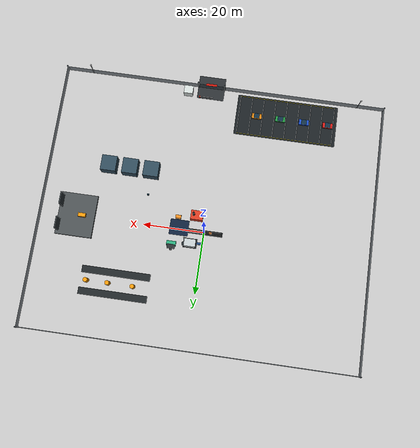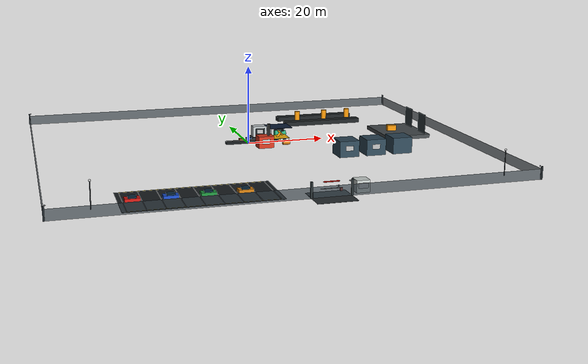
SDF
<sdf version="1.9">
 <world name="factory_floor">
  <model name="assembly_conveyor">
   <static>true</static>
   <pose>1 0 .45 0 0 0</pose>
   <link name="belt">
    <visual name="frame">
     <geometry><box><size>14 1.4 .7</size></box></geometry>
     <material><diffuse>.09 .11 .12 1</diffuse></material>
    </visual>
    <visual name="belt">
     <pose>0 0 .38 0 0 0</pose>
     <geometry><box><size>13.6 1.05 .08</size></box></geometry>
     <material><diffuse>.05 .06 .06 1</diffuse></material>
    </visual>
    <visual name="crate1">
     <pose>-3 0 .68 0 0 0</pose>
     <geometry><box><size>1 .8 .5</size></box></geometry>
     <material><diffuse>.55 .31 .12 1</diffuse></material>
    </visual>
    <visual name="crate2">
     <pose>2 0 .68 0 0 0</pose>
     <geometry><box><size>1 .8 .5</size></box></geometry>
     <material><diffuse>.55 .31 .12 1</diffuse></material>
    </visual>
   </link>
  </model>
  <model name="workstation">
   <static>true</static>
   <pose>10 6 1 0 0 0</pose>
   <link name="desk">
    <visual name="body">
     <geometry><box><size>2.5 1.2 1.8</size></box></geometry>
     <material><diffuse>.15 .17 .18 1</diffuse></material>
    </visual>
    <visual name="screen">
     <pose>0 -0.62 .4 0 0 0</pose>
     <geometry><box><size>1.3 .05 .8</size></box></geometry>
     <material><emissive>.02 .45 .65 1</emissive></material>
    </visual>
   </link>
  </model>
  <model name="automated_assembly_line">
   <static>true</static>
   <pose>26 17 0 0 0 0</pose>
   <link name="line">
    <visual name="line1">
     <pose>0 0 .6 0 0 0</pose>
     <geometry><box><size>22 2.2 1.2</size></box></geometry>
     <material><diffuse>.12 .14 .15 1</diffuse></material>
    </visual>
    <visual name="line2">
     <pose>0 7 .6 0 0 0</pose>
     <geometry><box><size>22 2.2 1.2</size></box></geometry>
     <material><diffuse>.12 .14 .15 1</diffuse></material>
    </visual>
    <visual name="robot_station1">
     <pose>-6 3.5 1.6 0 0 0</pose>
     <geometry><cylinder><radius>.7</radius><length>3.2</length></cylinder></geometry>
     <material><diffuse>.94 .58 .03 1</diffuse></material>
    </visual>
    <visual name="robot_station2">
     <pose>2 3.5 1.6 0 0 0</pose>
     <geometry><cylinder><radius>.7</radius><length>3.2</length></cylinder></geometry>
     <material><diffuse>.94 .58 .03 1</diffuse></material>
    </visual>
    <visual name="robot_station3">
     <pose>9 3.5 1.6 0 0 0</pose>
     <geometry><cylinder><radius>.7</radius><length>3.2</length></cylinder></geometry>
     <material><diffuse>.94 .58 .03 1</diffuse></material>
    </visual>
   </link>
  </model>
  <model name="quality_test_bays">
   <static>true</static>
   <pose>27 -18 0 0 0 0</pose>
   <link name="test">
    <visual name="bay1">
     <pose>-7 0 2 0 0 0</pose>
     <geometry><box><size>5 5 4</size></box></geometry>
     <material><diffuse>.18 .28 .34 1</diffuse></material>
    </visual>
    <visual name="bay2">
     <pose>0 0 2 0 0 0</pose>
     <geometry><box><size>5 5 4</size></box></geometry>
     <material><diffuse>.18 .28 .34 1</diffuse></material>
    </visual>
    <visual name="bay3">
     <pose>7 0 2 0 0 0</pose>
     <geometry><box><size>5 5 4</size></box></geometry>
     <material><diffuse>.18 .28 .34 1</diffuse></material>
    </visual>
    <visual name="screen1">
     <pose>-7 -2.55 2.2 0 0 0</pose>
     <geometry><box><size>2 .04 1.2</size></box></geometry>
     <material><emissive>.02 .5 .7 1</emissive></material>
    </visual>
    <visual name="screen2">
     <pose>0 -2.55 2.2 0 0 0</pose>
     <geometry><box><size>2 .04 1.2</size></box></geometry>
     <material><emissive>.02 .5 .7 1</emissive></material>
    </visual>
   </link>
  </model>
  <model name="shipping_dock">
   <static>true</static>
   <pose>42 0 0 0 0 0</pose>
   <link name="dock">
    <visual name="dock_platform">
     <pose>0 0 .5 0 0 0</pose>
     <geometry><box><size>12 14 1</size></box></geometry>
     <material><diffuse>.28 .3 .31 1</diffuse></material>
    </visual>
    <visual name="door1">
     <pose>5 -4 3 0 0 0</pose>
     <geometry><box><size>.2 4 6</size></box></geometry>
     <material><diffuse>.18 .22 .24 1</diffuse></material>
    </visual>
    <visual name="door2">
     <pose>5 4 3 0 0 0</pose>
     <geometry><box><size>.2 4 6</size></box></geometry>
     <material><diffuse>.18 .22 .24 1</diffuse></material>
    </visual>
    <visual name="forklift">
     <pose>-2 0 1.2 0 0 0</pose>
     <geometry><box><size>2.4 1.2 2.4</size></box></geometry>
     <material><diffuse>.94 .58 .03 1</diffuse></material>
    </visual>
    <visual name="forks">
     <pose>-3.5 0 .4 0 0 0</pose>
     <geometry><box><size>2 .8 .12</size></box></geometry>
     <material><diffuse>.16 .17 .18 1</diffuse></material>
    </visual>
   </link>
  </model>
  <model name="CNC_03">
   <static>true</static>
   <pose>4 4 0 0 0 0</pose>
   <link name="machine">
    <visual name="base">
     <pose>0 0 .35 0 0 0</pose>
     <geometry><box><size>4.4 3 .7</size></box></geometry>
     <material><diffuse>.16 .18 .19 1</diffuse></material>
    </visual>
    <visual name="enclosure">
     <pose>0 .25 2 0 0 0</pose>
     <geometry><box><size>3.7 2.4 3</size></box></geometry>
     <material><diffuse>.74 .77 .78 1</diffuse></material>
    </visual>
    <visual name="operator_door">
     <pose>0 -0.97 2.05 0 0 0</pose>
     <geometry><box><size>2.4 .05 1.8</size></box></geometry>
     <material><diffuse>.1 .13 .14 1</diffuse></material>
    </visual>
    <visual name="door_window">
     <pose>0 -1.01 2.15 0 0 0</pose>
     <geometry><box><size>1.6 .02 1.1</size></box></geometry>
     <material><emissive>.03 .26 .32 1</emissive></material>
    </visual>
    <visual name="tool_magazine">
     <pose>1.95 .7 1.7 0 0 0</pose>
     <geometry><cylinder><radius>.65</radius><length>1.8</length></cylinder></geometry>
     <material><diffuse>.12 .15 .16 1</diffuse></material>
    </visual>
    <visual name="chip_conveyor">
     <pose>-2.9 -.2 .35 0 0 0</pose>
     <geometry><box><size>1.5 .7 .5</size></box></geometry>
     <material><diffuse>.12 .27 .48 1</diffuse></material>
    </visual>
    <visual name="pendant">
     <pose>2 -1.25 2.2 0 .25 0</pose>
     <geometry><box><size>.45 .2 .7</size></box></geometry>
     <material><diffuse>.82 .82 .78 1</diffuse></material>
    </visual>
    <visual name="screen">
     <pose>2 -1.37 2.25 0 .25 0</pose>
     <geometry><box><size>.28 .02 .27</size></box></geometry>
     <material><emissive>.02 .5 .65 1</emissive></material>
    </visual>
   </link>
  </model>
  <model name="COMP_01">
   <static>true</static>
   <pose>10 5 .85 0 1.5708 0</pose>
   <link name="link">
    <visual name="tank">
     <geometry><cylinder><radius>.85</radius><length>3</length></cylinder></geometry>
     <material><diffuse>.16 .65 .47 1</diffuse></material>
    </visual>
    <visual name="motor">
     <pose>0 1.8 0 0 1.5708 0</pose>
     <geometry><cylinder><radius>.42</radius><length>1.2</length></cylinder></geometry>
     <material><diffuse>.16 .18 .19 1</diffuse></material>
    </visual>
   </link>
  </model>
  <model name="PUMP_01">
   <static>true</static>
   <pose>9 -4 .65 0 1.5708 0</pose>
   <link name="link">
    <visual name="body">
     <geometry><cylinder><radius>.65</radius><length>1.8</length></cylinder></geometry>
     <material><diffuse>.92 .55 .13 1</diffuse></material>
    </visual>
    <visual name="motor">
     <pose>0 1.2 0 0 1.5708 0</pose>
     <geometry><cylinder><radius>.4</radius><length>1.1</length></cylinder></geometry>
     <material><diffuse>.12 .14 .15 1</diffuse></material>
    </visual>
   </link>
  </model>
  <model name="FURNACE_01">
   <static>true</static>
   <pose>3 -5 1.5 0 0 0</pose>
   <link name="link">
    <visual name="body">
     <geometry><box><size>4 3 3</size></box></geometry>
     <material><diffuse>.82 .22 .12 1</diffuse></material>
    </visual>
    <visual name="heat">
     <pose>0 -1.51 .2 0 0 0</pose>
     <geometry><box><size>2 .02 1.2</size></box></geometry>
     <material><emissive>1 .12 .01 1</emissive></material>
    </visual>
    <visual name="chimney">
     <pose>1 0 3 0 0 0</pose>
     <geometry><cylinder><radius>.35</radius><length>3</length></cylinder></geometry>
     <material><diffuse>.13 .14 .14 1</diffuse></material>
    </visual>
   </link>
  </model>
  <model name="robot_cell">
   <static>true</static>
   <pose>8 0 0 0 0 0</pose>
   <link name="robot">
    <visual name="safety_fence">
     <pose>0 0 1.2 0 0 0</pose>
     <geometry><box><size>5 4 .08</size></box></geometry>
     <material><diffuse>.95 .7 .04 1</diffuse></material>
    </visual>
    <visual name="robot_base">
     <pose>0 0 .45 0 0 0</pose>
     <geometry><cylinder><radius>.65</radius><length>.9</length></cylinder></geometry>
     <material><diffuse>.9 .58 .04 1</diffuse></material>
    </visual>
    <visual name="arm1">
     <pose>0 0 1.4 0 .65 0</pose>
     <geometry><cylinder><radius>.28</radius><length>2.1</length></cylinder></geometry>
     <material><diffuse>.9 .58 .04 1</diffuse></material>
    </visual>
    <visual name="arm2">
     <pose>.65 0 2.25 0 -.8 0</pose>
     <geometry><cylinder><radius>.22</radius><length>1.7</length></cylinder></geometry>
     <material><diffuse>.9 .58 .04 1</diffuse></material>
    </visual>
    <visual name="gripper">
     <pose>1.2 0 2.7 0 0 0</pose>
     <geometry><box><size>.8 .35 .2</size></box></geometry>
     <material><diffuse>.15 .16 .17 1</diffuse></material>
    </visual>
   </link>
  </model>
  <model name="solar_canopy">
   <static>true</static>
   <pose>8 0 4 0 0 0</pose>
   <link name="link">
    <visual name="roof">
     <geometry><box><size>6 5 .15</size></box></geometry>
     <material><diffuse>.05 .12 .22 1</diffuse></material>
    </visual>
    <visual name="post1">
     <pose>-2.5 -2  -2 0 0 0</pose>
     <geometry><box><size>.2 .2 4</size></box></geometry>
    </visual>
   </link>
  </model>
  <model name="dual_pod_thermal_core_lid_assembly">
   <static>true</static>
   <pose>20 -10 0 0 0 0</pose>
   <link name="thermal_lid_and_can">
    <collision name="can_collision">
     <pose>0 0 .42 0 0 0</pose>
     <geometry><cylinder><radius>.26</radius><length>.72</length></cylinder></geometry>
    </collision>
    <visual name="milk_can_shell">
     <pose>0 0 .42 0 0 0</pose>
     <geometry><cylinder><radius>.28</radius><length>.72</length></cylinder></geometry>
     <material><diffuse>.38 .42 .43 1</diffuse><specular>.75 .75 .75 1</specular></material>
    </visual>
    <visual name="milk_volume_cutaway">
     <pose>0 0 .48 0 0 0</pose>
     <geometry><cylinder><radius>.255</radius><length>.59</length></cylinder></geometry>
     <transparency>.68</transparency>
     <material><diffuse>.82 .94 1 .32</diffuse></material>
    </visual>
    <visual name="container_base">
     <pose>0 0 .075 0 0 0</pose>
     <geometry><cylinder><radius>.285</radius><length>.05</length></cylinder></geometry>
     <material><diffuse>.12 .14 .15 1</diffuse></material>
    </visual>
    <visual name="insulated_lid">
     <pose>0 0 .82 0 0 0</pose>
     <geometry><cylinder><radius>.31</radius><length>.10</length></cylinder></geometry>
     <material><diffuse>.08 .31 .43 1</diffuse><specular>.18 .26 .3 1</specular></material>
    </visual>
    <visual name="sealing_collar">
     <pose>0 0 .755 0 0 0</pose>
     <geometry><cylinder><radius>.285</radius><length>.055</length></cylinder></geometry>
     <material><diffuse>.05 .09 .1 1</diffuse></material>
    </visual>
    <visual name="lid_top_inset">
     <pose>0 0 .874 0 0 0</pose>
     <geometry><cylinder><radius>.225</radius><length>.012</length></cylinder></geometry>
     <material><diffuse>.12 .42 .55 1</diffuse></material>
    </visual>
    <visual name="electronics_housing">
     <pose>0 -.02 .955 0 0 0</pose>
     <geometry><box><size>.25 .19 .12</size></box></geometry>
     <material><diffuse>.06 .08 .09 1</diffuse></material>
    </visual>
    <visual name="oled_display">
     <pose>0 -.121 .972 1.5708 0 0</pose>
     <geometry><box><size>.14 .008 .055</size></box></geometry>
     <material><emissive>.02 .72 .92 1</emissive><diffuse>.02 .15 .19 1</diffuse></material>
    </visual>
    <visual name="status_led">
     <pose>.09 -.126 1.01 0 0 0</pose>
     <geometry><sphere><radius>.012</radius></sphere></geometry>
     <material><emissive>.05 .95 .28 1</emissive></material>
    </visual>
    <visual name="handle_left_post">
     <pose>-.18 0 1.065 0 0 0</pose>
     <geometry><box><size>.045 .07 .30</size></box></geometry>
     <material><diffuse>.06 .08 .09 1</diffuse></material>
    </visual>
    <visual name="handle_right_post">
     <pose>.18 0 1.065 0 0 0</pose>
     <geometry><box><size>.045 .07 .30</size></box></geometry>
     <material><diffuse>.06 .08 .09 1</diffuse></material>
    </visual>
    <visual name="handle_grip">
     <pose>0 0 1.205 0 0 0</pose>
     <geometry><box><size>.40 .07 .055</size></box></geometry>
     <material><diffuse>.06 .08 .09 1</diffuse></material>
    </visual>
    <visual name="left_pod_cap">
     <pose>-.105 0 .72 0 0 0</pose>
     <geometry><cylinder><radius>.064</radius><length>.045</length></cylinder></geometry>
     <material><diffuse>.2 .24 .25 1</diffuse><specular>.8 .8 .8 1</specular></material>
    </visual>
    <visual name="right_pod_cap">
     <pose>.105 0 .72 0 0 0</pose>
     <geometry><cylinder><radius>.064</radius><length>.045</length></cylinder></geometry>
     <material><diffuse>.2 .24 .25 1</diffuse><specular>.8 .8 .8 1</specular></material>
    </visual>
    <visual name="left_ss304_gel_pod">
     <pose>-.105 0 .465 0 0 0</pose>
     <geometry><cylinder><radius>.052</radius><length>.48</length></cylinder></geometry>
     <material><diffuse>.58 .65 .67 1</diffuse><specular>.9 .9 .9 1</specular></material>
    </visual>
    <visual name="right_ss304_gel_pod">
     <pose>.105 0 .465 0 0 0</pose>
     <geometry><cylinder><radius>.052</radius><length>.48</length></cylinder></geometry>
     <material><diffuse>.58 .65 .67 1</diffuse><specular>.9 .9 .9 1</specular></material>
    </visual>
    <visual name="left_gel_core">
     <pose>-.105 -.001 .465 0 0 0</pose>
     <geometry><cylinder><radius>.038</radius><length>.43</length></cylinder></geometry>
     <transparency>.35</transparency>
     <material><diffuse>.12 .58 .86 .65</diffuse><emissive>.01 .08 .12 1</emissive></material>
    </visual>
    <visual name="right_gel_core">
     <pose>.105 -.001 .465 0 0 0</pose>
     <geometry><cylinder><radius>.038</radius><length>.43</length></cylinder></geometry>
     <transparency>.35</transparency>
     <material><diffuse>.12 .58 .86 .65</diffuse><emissive>.01 .08 .12 1</emissive></material>
    </visual>
   </link>
  </model>
  <model name="employee_car_park">
   <static>true</static>
   <link name="parking">
    <visual name="asphalt">
     <pose>-22 -42 .02 0 0 0</pose>
     <geometry><box><size>34 14 .04</size></box></geometry>
     <material><diffuse>.10 .12 .13 1</diffuse></material>
    </visual>
    <visual name="top_marking">
     <pose>-22 -35.4 .05 0 0 0</pose>
     <geometry><box><size>32 .12 .02</size></box></geometry>
     <material><diffuse>1 .85 .15 1</diffuse></material>
    </visual>
    <visual name="bottom_marking">
     <pose>-22 -48.6 .05 0 0 0</pose>
     <geometry><box><size>32 .12 .02</size></box></geometry>
     <material><diffuse>1 .85 .15 1</diffuse></material>
    </visual>
    <visual name="bay_01">
     <pose>-38 -42 .05 0 0 0</pose>
     <geometry><box><size>.12 13.2 .02</size></box></geometry>
     <material><diffuse>1 1 1 1</diffuse></material>
    </visual>
    <visual name="bay_02">
     <pose>-34 -42 .05 0 0 0</pose>
     <geometry><box><size>.12 13.2 .02</size></box></geometry>
     <material><diffuse>1 1 1 1</diffuse></material>
    </visual>
    <visual name="bay_03">
     <pose>-30 -42 .05 0 0 0</pose>
     <geometry><box><size>.12 13.2 .02</size></box></geometry>
     <material><diffuse>1 1 1 1</diffuse></material>
    </visual>
    <visual name="bay_04">
     <pose>-26 -42 .05 0 0 0</pose>
     <geometry><box><size>.12 13.2 .02</size></box></geometry>
     <material><diffuse>1 1 1 1</diffuse></material>
    </visual>
    <visual name="bay_05">
     <pose>-22 -42 .05 0 0 0</pose>
     <geometry><box><size>.12 13.2 .02</size></box></geometry>
     <material><diffuse>1 1 1 1</diffuse></material>
    </visual>
    <visual name="bay_06">
     <pose>-18 -42 .05 0 0 0</pose>
     <geometry><box><size>.12 13.2 .02</size></box></geometry>
     <material><diffuse>1 1 1 1</diffuse></material>
    </visual>
    <visual name="bay_07">
     <pose>-14 -42 .05 0 0 0</pose>
     <geometry><box><size>.12 13.2 .02</size></box></geometry>
     <material><diffuse>1 1 1 1</diffuse></material>
    </visual>
    <visual name="bay_08">
     <pose>-10 -42 .05 0 0 0</pose>
     <geometry><box><size>.12 13.2 .02</size></box></geometry>
     <material><diffuse>1 1 1 1</diffuse></material>
    </visual>
    <visual name="bay_09">
     <pose>-6 -42 .05 0 0 0</pose>
     <geometry><box><size>.12 13.2 .02</size></box></geometry>
     <material><diffuse>1 1 1 1</diffuse></material>
    </visual>
    <visual name="car_01">
     <pose>-36 -42 0.52 0 0 0</pose>
     <geometry><box><size>3.3 1.8 .68</size></box></geometry>
     <material><diffuse>.80 .10 .08 1</diffuse></material>
    </visual>
    <visual name="car_01_cabin">
     <pose>-36 -42 1.0 0 0 0</pose>
     <geometry><box><size>1.75 1.62 .38</size></box></geometry>
     <material><diffuse>.06 .18 .26 1</diffuse></material>
    </visual>
    <visual name="car_02">
     <pose>-28 -42 0.52 0 0 0</pose>
     <geometry><box><size>3.3 1.8 .68</size></box></geometry>
     <material><diffuse>.10 .30 .78 1</diffuse></material>
    </visual>
    <visual name="car_02_cabin">
     <pose>-28 -42 1.0 0 0 0</pose>
     <geometry><box><size>1.75 1.62 .38</size></box></geometry>
     <material><diffuse>.06 .18 .26 1</diffuse></material>
    </visual>
    <visual name="car_03">
     <pose>-20 -42 0.52 0 0 0</pose>
     <geometry><box><size>3.3 1.8 .68</size></box></geometry>
     <material><diffuse>.12 .56 .24 1</diffuse></material>
    </visual>
    <visual name="car_03_cabin">
     <pose>-20 -42 1.0 0 0 0</pose>
     <geometry><box><size>1.75 1.62 .38</size></box></geometry>
     <material><diffuse>.06 .18 .26 1</diffuse></material>
    </visual>
    <visual name="car_04">
     <pose>-12 -42 0.52 0 0 0</pose>
     <geometry><box><size>3.3 1.8 .68</size></box></geometry>
     <material><diffuse>.80 .48 .06 1</diffuse></material>
    </visual>
    <visual name="car_04_cabin">
     <pose>-12 -42 1.0 0 0 0</pose>
     <geometry><box><size>1.75 1.62 .38</size></box></geometry>
     <material><diffuse>.06 .18 .26 1</diffuse></material>
    </visual>
   </link>
  </model>
  <model name="site_security_perimeter">
   <static>true</static>
   <link name="perimeter">
    <visual name="north_fence">
     <pose>0 38 1.2 0 0 0</pose>
     <geometry><box><size>108 .10 2.4</size></box></geometry>
     <material><diffuse>.20 .24 .27 1</diffuse></material>
     <transparency>.32</transparency>
    </visual>
    <visual name="west_fence">
     <pose>-54 -6 1.2 0 0 0</pose>
     <geometry><box><size>.10 88 2.4</size></box></geometry>
     <material><diffuse>.20 .24 .27 1</diffuse></material>
     <transparency>.32</transparency>
    </visual>
    <visual name="east_fence">
     <pose>54 -6 1.2 0 0 0</pose>
     <geometry><box><size>.10 88 2.4</size></box></geometry>
     <material><diffuse>.20 .24 .27 1</diffuse></material>
     <transparency>.32</transparency>
    </visual>
    <visual name="south_fence_west">
     <pose>-27 -50 1.2 0 0 0</pose>
     <geometry><box><size>54 .10 2.4</size></box></geometry>
     <material><diffuse>.20 .24 .27 1</diffuse></material>
     <transparency>.32</transparency>
    </visual>
    <visual name="south_fence_east">
     <pose>31.5 -50 1.2 0 0 0</pose>
     <geometry><box><size>45 .10 2.4</size></box></geometry>
     <material><diffuse>.20 .24 .27 1</diffuse></material>
     <transparency>.32</transparency>
    </visual>
    <visual name="post_nw">
     <pose>-54 38 1.5 0 0 0</pose>
     <geometry><box><size>.35 .35 3</size></box></geometry>
     <material><diffuse>.10 .13 .15 1</diffuse></material>
    </visual>
    <visual name="post_ne">
     <pose>54 38 1.5 0 0 0</pose>
     <geometry><box><size>.35 .35 3</size></box></geometry>
     <material><diffuse>.10 .13 .15 1</diffuse></material>
    </visual>
    <visual name="post_sw">
     <pose>-54 -50 1.5 0 0 0</pose>
     <geometry><box><size>.35 .35 3</size></box></geometry>
     <material><diffuse>.10 .13 .15 1</diffuse></material>
    </visual>
    <visual name="post_se">
     <pose>54 -50 1.5 0 0 0</pose>
     <geometry><box><size>.35 .35 3</size></box></geometry>
     <material><diffuse>.10 .13 .15 1</diffuse></material>
    </visual>
    <visual name="camera_nw">
     <pose>-53.7 37.7 3.05 0 .55 .78</pose>
     <geometry><box><size>.34 .22 .18</size></box></geometry>
     <material><diffuse>.04 .05 .06 1</diffuse></material>
    </visual>
    <visual name="camera_ne">
     <pose>53.7 37.7 3.05 0 -.55 2.36</pose>
     <geometry><box><size>.34 .22 .18</size></box></geometry>
     <material><diffuse>.04 .05 .06 1</diffuse></material>
    </visual>
    <visual name="camera_sw">
     <pose>-53.7 -49.7 3.05 0 .55 -.78</pose>
     <geometry><box><size>.34 .22 .18</size></box></geometry>
     <material><diffuse>.04 .05 .06 1</diffuse></material>
    </visual>
    <visual name="camera_se">
     <pose>53.7 -49.7 3.05 0 -.55 -2.36</pose>
     <geometry><box><size>.34 .22 .18</size></box></geometry>
     <material><diffuse>.04 .05 .06 1</diffuse></material>
    </visual>
    <visual name="security_light_west">
     <pose>-45 -49.4 4.4 0 0 0</pose>
     <geometry><cylinder><radius>.10</radius><length>6</length></cylinder></geometry>
     <material><diffuse>.18 .20 .22 1</diffuse></material>
    </visual>
    <visual name="security_light_west_lamp">
     <pose>-45 -49.4 7.25 0 0 0</pose>
     <geometry><sphere><radius>.26</radius></sphere></geometry>
     <material><emissive>.9 .95 1 1</emissive></material>
    </visual>
    <visual name="security_light_east">
     <pose>45 -49.4 4.4 0 0 0</pose>
     <geometry><cylinder><radius>.10</radius><length>6</length></cylinder></geometry>
     <material><diffuse>.18 .20 .22 1</diffuse></material>
    </visual>
    <visual name="security_light_east_lamp">
     <pose>45 -49.4 7.25 0 0 0</pose>
     <geometry><sphere><radius>.26</radius></sphere></geometry>
     <material><emissive>.9 .95 1 1</emissive></material>
    </visual>
   </link>
  </model>
  <model name="main_security_gate">
   <static>true</static>
   <link name="gate">
    <visual name="entry_road">
     <pose>4.5 -50 .02 0 0 0</pose>
     <geometry><box><size>9 8 .05</size></box></geometry>
     <material><diffuse>.16 .18 .19 1</diffuse></material>
    </visual>
    <visual name="gate_post_left">
     <pose>0 -50 1.8 0 0 0</pose>
     <geometry><box><size>.45 .45 3.6</size></box></geometry>
     <material><diffuse>.15 .18 .19 1</diffuse></material>
    </visual>
    <visual name="gate_post_right">
     <pose>9 -50 1.8 0 0 0</pose>
     <geometry><box><size>.45 .45 3.6</size></box></geometry>
     <material><diffuse>.15 .18 .19 1</diffuse></material>
    </visual>
    <visual name="sliding_gate">
     <pose>4.5 -50 1.25 0 0 0</pose>
     <geometry><box><size>8.3 .12 2.35</size></box></geometry>
     <material><diffuse>.22 .27 .30 1</diffuse></material>
     <transparency>.30</transparency>
    </visual>
    <visual name="guard_booth">
     <pose>12 -47.5 1.35 0 0 0</pose>
     <geometry><box><size>3 2.7 2.7</size></box></geometry>
     <material><diffuse>.80 .83 .82 1</diffuse></material>
    </visual>
    <visual name="guard_booth_window">
     <pose>12 -48.87 1.55 0 0 0</pose>
     <geometry><box><size>2.2 .03 1.2</size></box></geometry>
     <material><emissive>.03 .40 .55 1</emissive></material>
    </visual>
    <visual name="barrier_base">
     <pose>8.0 -46.3 .36 0 0 0</pose>
     <geometry><box><size>.5 .5 .72</size></box></geometry>
     <material><diffuse>.75 .12 .05 1</diffuse></material>
    </visual>
    <visual name="barrier_arm">
     <pose>5.7 -46.3 .74 0 0 0</pose>
     <geometry><box><size>4.6 .12 .12</size></box></geometry>
     <material><diffuse>1 .95 .95 1</diffuse></material>
    </visual>
    <visual name="rfid_reader">
     <pose>7.6 -45.9 1.0 0 0 0</pose>
     <geometry><box><size>.22 .16 .42</size></box></geometry>
     <material><emissive>.05 .65 .22 1</emissive></material>
    </visual>
    <visual name="gate_camera">
     <pose>8.7 -49.6 3.15 0 .5 0</pose>
     <geometry><box><size>.38 .24 .20</size></box></geometry>
     <material><diffuse>.03 .04 .05 1</diffuse></material>
    </visual>
    <visual name="security_sign">
     <pose>4.5 -49.75 3.3 1.5708 0 0</pose>
     <geometry><box><size>3.6 .04 .75</size></box></geometry>
     <material><diffuse>.75 .08 .04 1</diffuse><emissive>.15 .01 .01 1</emissive></material>
    </visual>
   </link>
  </model>
 </world>
</sdf>
